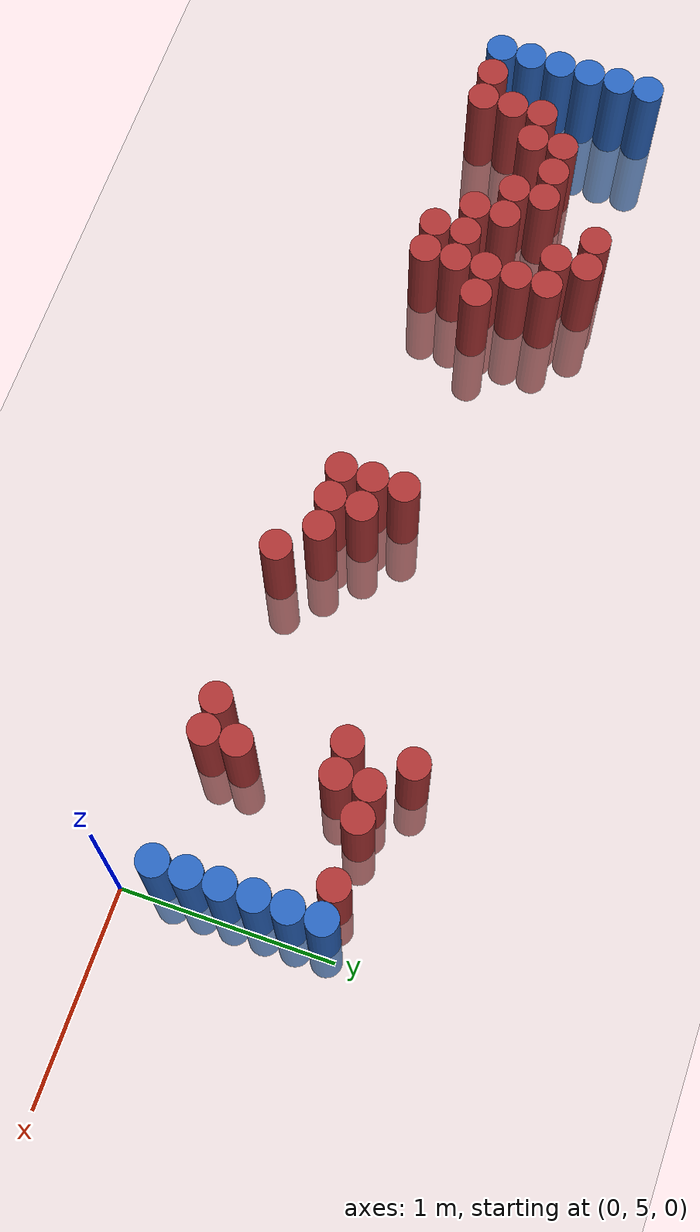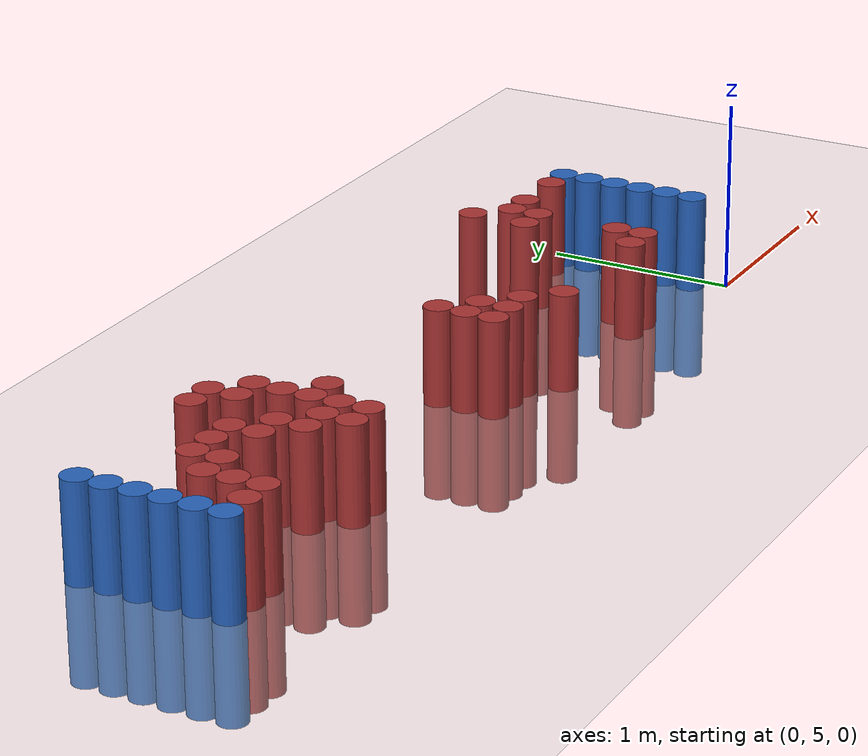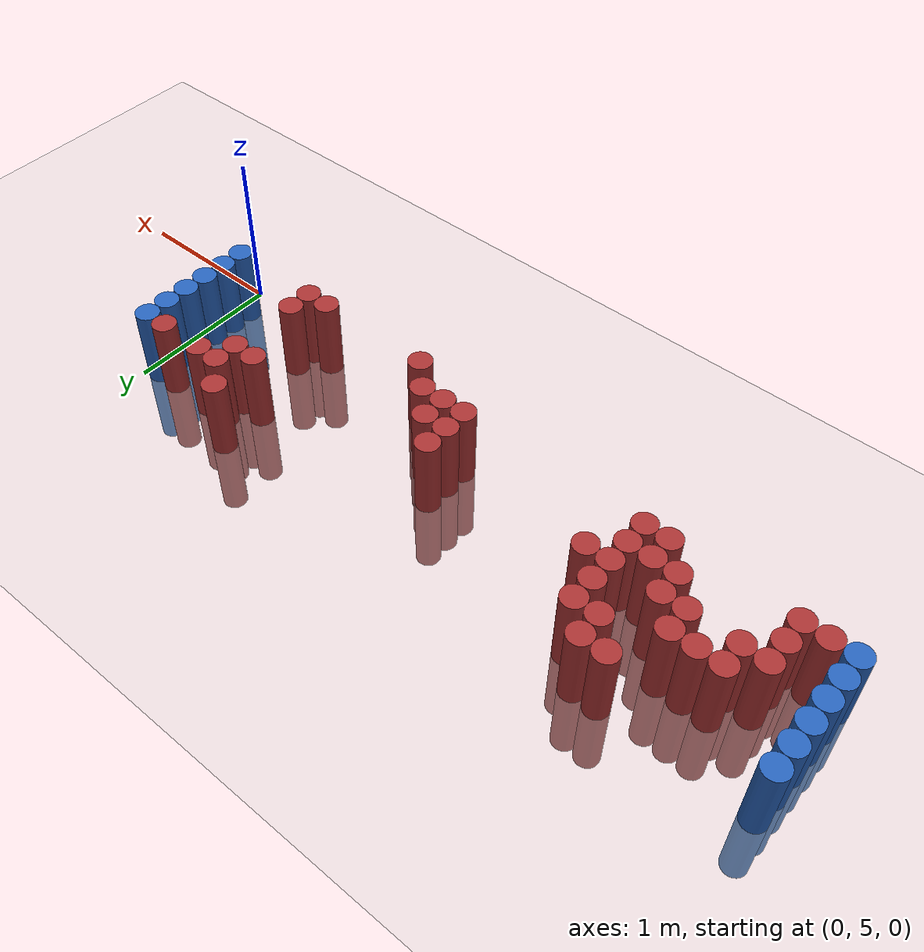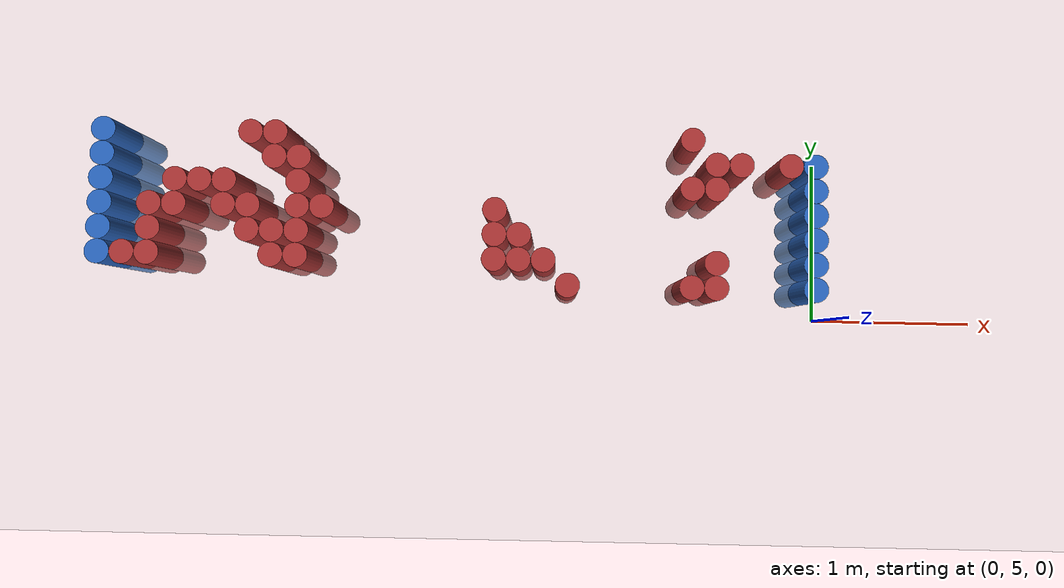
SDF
<sdf version="1.6">
 <world name="default">
  <model name="ground_plane">
   <static>1</static>
   <link name="link">
    <collision name="collision">
     <geometry><plane><normal>0 0 1</normal><size>100 100</size></plane></geometry>
     <surface><friction><ode><mu>100</mu><mu2>50</mu2></ode></friction></surface>
    </collision>
    <visual name="visual">
     <cast_shadows>0</cast_shadows>
     <geometry><plane><normal>0 0 1</normal><size>100 100</size></plane></geometry>
     <material>
      <script><uri>file://media/materials/scripts/gazebo.material</uri><name>Gazebo/Grey</name></script>
     </material>
    </visual>
   </link>
  </model>
  <model name="unit_cylinder_97">
   <static>1</static>
   <pose>-4.425000 5.325000 0.000000 0.000000 0.000000 0.000000</pose>
   <link name="link">
    <inertial>
     <mass>1</mass>
     <inertia><ixx>0.145833</ixx><ixy>0</ixy><ixz>0</ixz><iyy>0.145833</iyy><iyz>0</iyz><izz>0.125</izz></inertia>
    </inertial>
    <collision name="collision">
     <geometry><cylinder><radius>0.075000</radius><length>1</length></cylinder></geometry>
    </collision>
    <visual name="visual">
     <geometry><cylinder><radius>0.075000</radius><length>1</length></cylinder></geometry>
     <material>
      <ambient>0.152000 0.379000 0.720000 1</ambient>
      <diffuse>0.152000 0.379000 0.720000 1</diffuse>
     </material>
     <material>
      <script><name>Gazebo/Grey</name><uri>file://media/materials/scripts/gazebo.material</uri></script>
     </material>
    </visual>
   </link>
  </model>
  <model name="unit_cylinder_98">
   <static>1</static>
   <pose>-4.425000 5.475000 0.000000 0.000000 0.000000 0.000000</pose>
   <link name="link">
    <inertial>
     <mass>1</mass>
     <inertia><ixx>0.145833</ixx><ixy>0</ixy><ixz>0</ixz><iyy>0.145833</iyy><iyz>0</iyz><izz>0.125</izz></inertia>
    </inertial>
    <collision name="collision">
     <geometry><cylinder><radius>0.075000</radius><length>1</length></cylinder></geometry>
    </collision>
    <visual name="visual">
     <geometry><cylinder><radius>0.075000</radius><length>1</length></cylinder></geometry>
     <material>
      <ambient>0.152000 0.379000 0.720000 1</ambient>
      <diffuse>0.152000 0.379000 0.720000 1</diffuse>
     </material>
     <material>
      <script><name>Gazebo/Grey</name><uri>file://media/materials/scripts/gazebo.material</uri></script>
     </material>
    </visual>
   </link>
  </model>
  <model name="unit_cylinder_99">
   <static>1</static>
   <pose>-4.425000 5.625000 0.000000 0.000000 0.000000 0.000000</pose>
   <link name="link">
    <inertial>
     <mass>1</mass>
     <inertia><ixx>0.145833</ixx><ixy>0</ixy><ixz>0</ixz><iyy>0.145833</iyy><iyz>0</iyz><izz>0.125</izz></inertia>
    </inertial>
    <collision name="collision">
     <geometry><cylinder><radius>0.075000</radius><length>1</length></cylinder></geometry>
    </collision>
    <visual name="visual">
     <geometry><cylinder><radius>0.075000</radius><length>1</length></cylinder></geometry>
     <material>
      <ambient>0.152000 0.379000 0.720000 1</ambient>
      <diffuse>0.152000 0.379000 0.720000 1</diffuse>
     </material>
     <material>
      <script><name>Gazebo/Grey</name><uri>file://media/materials/scripts/gazebo.material</uri></script>
     </material>
    </visual>
   </link>
  </model>
  <model name="unit_cylinder_100">
   <static>1</static>
   <pose>-4.425000 5.775000 0.000000 0.000000 0.000000 0.000000</pose>
   <link name="link">
    <inertial>
     <mass>1</mass>
     <inertia><ixx>0.145833</ixx><ixy>0</ixy><ixz>0</ixz><iyy>0.145833</iyy><iyz>0</iyz><izz>0.125</izz></inertia>
    </inertial>
    <collision name="collision">
     <geometry><cylinder><radius>0.075000</radius><length>1</length></cylinder></geometry>
    </collision>
    <visual name="visual">
     <geometry><cylinder><radius>0.075000</radius><length>1</length></cylinder></geometry>
     <material>
      <ambient>0.152000 0.379000 0.720000 1</ambient>
      <diffuse>0.152000 0.379000 0.720000 1</diffuse>
     </material>
     <material>
      <script><name>Gazebo/Grey</name><uri>file://media/materials/scripts/gazebo.material</uri></script>
     </material>
    </visual>
   </link>
  </model>
  <model name="unit_cylinder_101">
   <static>1</static>
   <pose>-4.425000 5.925000 0.000000 0.000000 0.000000 0.000000</pose>
   <link name="link">
    <inertial>
     <mass>1</mass>
     <inertia><ixx>0.145833</ixx><ixy>0</ixy><ixz>0</ixz><iyy>0.145833</iyy><iyz>0</iyz><izz>0.125</izz></inertia>
    </inertial>
    <collision name="collision">
     <geometry><cylinder><radius>0.075000</radius><length>1</length></cylinder></geometry>
    </collision>
    <visual name="visual">
     <geometry><cylinder><radius>0.075000</radius><length>1</length></cylinder></geometry>
     <material>
      <ambient>0.152000 0.379000 0.720000 1</ambient>
      <diffuse>0.152000 0.379000 0.720000 1</diffuse>
     </material>
     <material>
      <script><name>Gazebo/Grey</name><uri>file://media/materials/scripts/gazebo.material</uri></script>
     </material>
    </visual>
   </link>
  </model>
  <model name="unit_cylinder_102">
   <static>1</static>
   <pose>-4.425000 6.075000 0.000000 0.000000 0.000000 0.000000</pose>
   <link name="link">
    <inertial>
     <mass>1</mass>
     <inertia><ixx>0.145833</ixx><ixy>0</ixy><ixz>0</ixz><iyy>0.145833</iyy><iyz>0</iyz><izz>0.125</izz></inertia>
    </inertial>
    <collision name="collision">
     <geometry><cylinder><radius>0.075000</radius><length>1</length></cylinder></geometry>
    </collision>
    <visual name="visual">
     <geometry><cylinder><radius>0.075000</radius><length>1</length></cylinder></geometry>
     <material>
      <ambient>0.152000 0.379000 0.720000 1</ambient>
      <diffuse>0.152000 0.379000 0.720000 1</diffuse>
     </material>
     <material>
      <script><name>Gazebo/Grey</name><uri>file://media/materials/scripts/gazebo.material</uri></script>
     </material>
    </visual>
   </link>
  </model>
  <model name="unit_cylinder_126">
   <static>1</static>
   <pose>-4.275000 5.325000 0.000000 0.000000 0.000000 0.000000</pose>
   <link name="link">
    <inertial>
     <mass>1</mass>
     <inertia><ixx>0.145833</ixx><ixy>0</ixy><ixz>0</ixz><iyy>0.145833</iyy><iyz>0</iyz><izz>0.125</izz></inertia>
    </inertial>
    <collision name="collision">
     <geometry><cylinder><radius>0.075000</radius><length>1</length></cylinder></geometry>
    </collision>
    <visual name="visual">
     <geometry><cylinder><radius>0.075000</radius><length>1</length></cylinder></geometry>
     <material>
      <ambient>0.648000 0.192000 0.192000 1</ambient>
      <diffuse>0.648000 0.192000 0.192000 1</diffuse>
     </material>
     <material>
      <script><name>Gazebo/Grey</name><uri>file://media/materials/scripts/gazebo.material</uri></script>
     </material>
    </visual>
   </link>
  </model>
  <model name="unit_cylinder_137">
   <static>1</static>
   <pose>-4.125000 5.325000 0.000000 0.000000 0.000000 0.000000</pose>
   <link name="link">
    <inertial>
     <mass>1</mass>
     <inertia><ixx>0.145833</ixx><ixy>0</ixy><ixz>0</ixz><iyy>0.145833</iyy><iyz>0</iyz><izz>0.125</izz></inertia>
    </inertial>
    <collision name="collision">
     <geometry><cylinder><radius>0.075000</radius><length>1</length></cylinder></geometry>
    </collision>
    <visual name="visual">
     <geometry><cylinder><radius>0.075000</radius><length>1</length></cylinder></geometry>
     <material>
      <ambient>0.648000 0.192000 0.192000 1</ambient>
      <diffuse>0.648000 0.192000 0.192000 1</diffuse>
     </material>
     <material>
      <script><name>Gazebo/Grey</name><uri>file://media/materials/scripts/gazebo.material</uri></script>
     </material>
    </visual>
   </link>
  </model>
  <model name="unit_cylinder_138">
   <static>1</static>
   <pose>-4.125000 5.475000 0.000000 0.000000 0.000000 0.000000</pose>
   <link name="link">
    <inertial>
     <mass>1</mass>
     <inertia><ixx>0.145833</ixx><ixy>0</ixy><ixz>0</ixz><iyy>0.145833</iyy><iyz>0</iyz><izz>0.125</izz></inertia>
    </inertial>
    <collision name="collision">
     <geometry><cylinder><radius>0.075000</radius><length>1</length></cylinder></geometry>
    </collision>
    <visual name="visual">
     <geometry><cylinder><radius>0.075000</radius><length>1</length></cylinder></geometry>
     <material>
      <ambient>0.648000 0.192000 0.192000 1</ambient>
      <diffuse>0.648000 0.192000 0.192000 1</diffuse>
     </material>
     <material>
      <script><name>Gazebo/Grey</name><uri>file://media/materials/scripts/gazebo.material</uri></script>
     </material>
    </visual>
   </link>
  </model>
  <model name="unit_cylinder_139">
   <static>1</static>
   <pose>-4.125000 5.625000 0.000000 0.000000 0.000000 0.000000</pose>
   <link name="link">
    <inertial>
     <mass>1</mass>
     <inertia><ixx>0.145833</ixx><ixy>0</ixy><ixz>0</ixz><iyy>0.145833</iyy><iyz>0</iyz><izz>0.125</izz></inertia>
    </inertial>
    <collision name="collision">
     <geometry><cylinder><radius>0.075000</radius><length>1</length></cylinder></geometry>
    </collision>
    <visual name="visual">
     <geometry><cylinder><radius>0.075000</radius><length>1</length></cylinder></geometry>
     <material>
      <ambient>0.648000 0.192000 0.192000 1</ambient>
      <diffuse>0.648000 0.192000 0.192000 1</diffuse>
     </material>
     <material>
      <script><name>Gazebo/Grey</name><uri>file://media/materials/scripts/gazebo.material</uri></script>
     </material>
    </visual>
   </link>
  </model>
  <model name="unit_cylinder_147">
   <static>1</static>
   <pose>-3.975000 5.625000 0.000000 0.000000 0.000000 0.000000</pose>
   <link name="link">
    <inertial>
     <mass>1</mass>
     <inertia><ixx>0.145833</ixx><ixy>0</ixy><ixz>0</ixz><iyy>0.145833</iyy><iyz>0</iyz><izz>0.125</izz></inertia>
    </inertial>
    <collision name="collision">
     <geometry><cylinder><radius>0.075000</radius><length>1</length></cylinder></geometry>
    </collision>
    <visual name="visual">
     <geometry><cylinder><radius>0.075000</radius><length>1</length></cylinder></geometry>
     <material>
      <ambient>0.648000 0.192000 0.192000 1</ambient>
      <diffuse>0.648000 0.192000 0.192000 1</diffuse>
     </material>
     <material>
      <script><name>Gazebo/Grey</name><uri>file://media/materials/scripts/gazebo.material</uri></script>
     </material>
    </visual>
   </link>
  </model>
  <model name="unit_cylinder_148">
   <static>1</static>
   <pose>-3.975000 5.775000 0.000000 0.000000 0.000000 0.000000</pose>
   <link name="link">
    <inertial>
     <mass>1</mass>
     <inertia><ixx>0.145833</ixx><ixy>0</ixy><ixz>0</ixz><iyy>0.145833</iyy><iyz>0</iyz><izz>0.125</izz></inertia>
    </inertial>
    <collision name="collision">
     <geometry><cylinder><radius>0.075000</radius><length>1</length></cylinder></geometry>
    </collision>
    <visual name="visual">
     <geometry><cylinder><radius>0.075000</radius><length>1</length></cylinder></geometry>
     <material>
      <ambient>0.648000 0.192000 0.192000 1</ambient>
      <diffuse>0.648000 0.192000 0.192000 1</diffuse>
     </material>
     <material>
      <script><name>Gazebo/Grey</name><uri>file://media/materials/scripts/gazebo.material</uri></script>
     </material>
    </visual>
   </link>
  </model>
  <model name="unit_cylinder_157">
   <static>1</static>
   <pose>-3.825000 5.775000 0.000000 0.000000 0.000000 0.000000</pose>
   <link name="link">
    <inertial>
     <mass>1</mass>
     <inertia><ixx>0.145833</ixx><ixy>0</ixy><ixz>0</ixz><iyy>0.145833</iyy><iyz>0</iyz><izz>0.125</izz></inertia>
    </inertial>
    <collision name="collision">
     <geometry><cylinder><radius>0.075000</radius><length>1</length></cylinder></geometry>
    </collision>
    <visual name="visual">
     <geometry><cylinder><radius>0.075000</radius><length>1</length></cylinder></geometry>
     <material>
      <ambient>0.648000 0.192000 0.192000 1</ambient>
      <diffuse>0.648000 0.192000 0.192000 1</diffuse>
     </material>
     <material>
      <script><name>Gazebo/Grey</name><uri>file://media/materials/scripts/gazebo.material</uri></script>
     </material>
    </visual>
   </link>
  </model>
  <model name="unit_cylinder_163">
   <static>1</static>
   <pose>-3.675000 5.625000 0.000000 0.000000 0.000000 0.000000</pose>
   <link name="link">
    <inertial>
     <mass>1</mass>
     <inertia><ixx>0.145833</ixx><ixy>0</ixy><ixz>0</ixz><iyy>0.145833</iyy><iyz>0</iyz><izz>0.125</izz></inertia>
    </inertial>
    <collision name="collision">
     <geometry><cylinder><radius>0.075000</radius><length>1</length></cylinder></geometry>
    </collision>
    <visual name="visual">
     <geometry><cylinder><radius>0.075000</radius><length>1</length></cylinder></geometry>
     <material>
      <ambient>0.648000 0.192000 0.192000 1</ambient>
      <diffuse>0.648000 0.192000 0.192000 1</diffuse>
     </material>
     <material>
      <script><name>Gazebo/Grey</name><uri>file://media/materials/scripts/gazebo.material</uri></script>
     </material>
    </visual>
   </link>
  </model>
  <model name="unit_cylinder_164">
   <static>1</static>
   <pose>-3.675000 5.775000 0.000000 0.000000 0.000000 0.000000</pose>
   <link name="link">
    <inertial>
     <mass>1</mass>
     <inertia><ixx>0.145833</ixx><ixy>0</ixy><ixz>0</ixz><iyy>0.145833</iyy><iyz>0</iyz><izz>0.125</izz></inertia>
    </inertial>
    <collision name="collision">
     <geometry><cylinder><radius>0.075000</radius><length>1</length></cylinder></geometry>
    </collision>
    <visual name="visual">
     <geometry><cylinder><radius>0.075000</radius><length>1</length></cylinder></geometry>
     <material>
      <ambient>0.648000 0.192000 0.192000 1</ambient>
      <diffuse>0.648000 0.192000 0.192000 1</diffuse>
     </material>
     <material>
      <script><name>Gazebo/Grey</name><uri>file://media/materials/scripts/gazebo.material</uri></script>
     </material>
    </visual>
   </link>
  </model>
  <model name="unit_cylinder_171">
   <static>1</static>
   <pose>-3.525000 5.475000 0.000000 0.000000 0.000000 0.000000</pose>
   <link name="link">
    <inertial>
     <mass>1</mass>
     <inertia><ixx>0.145833</ixx><ixy>0</ixy><ixz>0</ixz><iyy>0.145833</iyy><iyz>0</iyz><izz>0.125</izz></inertia>
    </inertial>
    <collision name="collision">
     <geometry><cylinder><radius>0.075000</radius><length>1</length></cylinder></geometry>
    </collision>
    <visual name="visual">
     <geometry><cylinder><radius>0.075000</radius><length>1</length></cylinder></geometry>
     <material>
      <ambient>0.648000 0.192000 0.192000 1</ambient>
      <diffuse>0.648000 0.192000 0.192000 1</diffuse>
     </material>
     <material>
      <script><name>Gazebo/Grey</name><uri>file://media/materials/scripts/gazebo.material</uri></script>
     </material>
    </visual>
   </link>
  </model>
  <model name="unit_cylinder_172">
   <static>1</static>
   <pose>-3.525000 5.625000 0.000000 0.000000 0.000000 0.000000</pose>
   <link name="link">
    <inertial>
     <mass>1</mass>
     <inertia><ixx>0.145833</ixx><ixy>0</ixy><ixz>0</ixz><iyy>0.145833</iyy><iyz>0</iyz><izz>0.125</izz></inertia>
    </inertial>
    <collision name="collision">
     <geometry><cylinder><radius>0.075000</radius><length>1</length></cylinder></geometry>
    </collision>
    <visual name="visual">
     <geometry><cylinder><radius>0.075000</radius><length>1</length></cylinder></geometry>
     <material>
      <ambient>0.648000 0.192000 0.192000 1</ambient>
      <diffuse>0.648000 0.192000 0.192000 1</diffuse>
     </material>
     <material>
      <script><name>Gazebo/Grey</name><uri>file://media/materials/scripts/gazebo.material</uri></script>
     </material>
    </visual>
   </link>
  </model>
  <model name="unit_cylinder_173">
   <static>1</static>
   <pose>-3.525000 6.075000 0.000000 0.000000 0.000000 0.000000</pose>
   <link name="link">
    <inertial>
     <mass>1</mass>
     <inertia><ixx>0.145833</ixx><ixy>0</ixy><ixz>0</ixz><iyy>0.145833</iyy><iyz>0</iyz><izz>0.125</izz></inertia>
    </inertial>
    <collision name="collision">
     <geometry><cylinder><radius>0.075000</radius><length>1</length></cylinder></geometry>
    </collision>
    <visual name="visual">
     <geometry><cylinder><radius>0.075000</radius><length>1</length></cylinder></geometry>
     <material>
      <ambient>0.648000 0.192000 0.192000 1</ambient>
      <diffuse>0.648000 0.192000 0.192000 1</diffuse>
     </material>
     <material>
      <script><name>Gazebo/Grey</name><uri>file://media/materials/scripts/gazebo.material</uri></script>
     </material>
    </visual>
   </link>
  </model>
  <model name="unit_cylinder_184">
   <static>1</static>
   <pose>-3.375000 5.325000 0.000000 0.000000 0.000000 0.000000</pose>
   <link name="link">
    <inertial>
     <mass>1</mass>
     <inertia><ixx>0.145833</ixx><ixy>0</ixy><ixz>0</ixz><iyy>0.145833</iyy><iyz>0</iyz><izz>0.125</izz></inertia>
    </inertial>
    <collision name="collision">
     <geometry><cylinder><radius>0.075000</radius><length>1</length></cylinder></geometry>
    </collision>
    <visual name="visual">
     <geometry><cylinder><radius>0.075000</radius><length>1</length></cylinder></geometry>
     <material>
      <ambient>0.648000 0.192000 0.192000 1</ambient>
      <diffuse>0.648000 0.192000 0.192000 1</diffuse>
     </material>
     <material>
      <script><name>Gazebo/Grey</name><uri>file://media/materials/scripts/gazebo.material</uri></script>
     </material>
    </visual>
   </link>
  </model>
  <model name="unit_cylinder_185">
   <static>1</static>
   <pose>-3.375000 5.475000 0.000000 0.000000 0.000000 0.000000</pose>
   <link name="link">
    <inertial>
     <mass>1</mass>
     <inertia><ixx>0.145833</ixx><ixy>0</ixy><ixz>0</ixz><iyy>0.145833</iyy><iyz>0</iyz><izz>0.125</izz></inertia>
    </inertial>
    <collision name="collision">
     <geometry><cylinder><radius>0.075000</radius><length>1</length></cylinder></geometry>
    </collision>
    <visual name="visual">
     <geometry><cylinder><radius>0.075000</radius><length>1</length></cylinder></geometry>
     <material>
      <ambient>0.648000 0.192000 0.192000 1</ambient>
      <diffuse>0.648000 0.192000 0.192000 1</diffuse>
     </material>
     <material>
      <script><name>Gazebo/Grey</name><uri>file://media/materials/scripts/gazebo.material</uri></script>
     </material>
    </visual>
   </link>
  </model>
  <model name="unit_cylinder_186">
   <static>1</static>
   <pose>-3.375000 5.925000 0.000000 0.000000 0.000000 0.000000</pose>
   <link name="link">
    <inertial>
     <mass>1</mass>
     <inertia><ixx>0.145833</ixx><ixy>0</ixy><ixz>0</ixz><iyy>0.145833</iyy><iyz>0</iyz><izz>0.125</izz></inertia>
    </inertial>
    <collision name="collision">
     <geometry><cylinder><radius>0.075000</radius><length>1</length></cylinder></geometry>
    </collision>
    <visual name="visual">
     <geometry><cylinder><radius>0.075000</radius><length>1</length></cylinder></geometry>
     <material>
      <ambient>0.648000 0.192000 0.192000 1</ambient>
      <diffuse>0.648000 0.192000 0.192000 1</diffuse>
     </material>
     <material>
      <script><name>Gazebo/Grey</name><uri>file://media/materials/scripts/gazebo.material</uri></script>
     </material>
    </visual>
   </link>
  </model>
  <model name="unit_cylinder_187">
   <static>1</static>
   <pose>-3.375000 6.075000 0.000000 0.000000 0.000000 0.000000</pose>
   <link name="link">
    <inertial>
     <mass>1</mass>
     <inertia><ixx>0.145833</ixx><ixy>0</ixy><ixz>0</ixz><iyy>0.145833</iyy><iyz>0</iyz><izz>0.125</izz></inertia>
    </inertial>
    <collision name="collision">
     <geometry><cylinder><radius>0.075000</radius><length>1</length></cylinder></geometry>
    </collision>
    <visual name="visual">
     <geometry><cylinder><radius>0.075000</radius><length>1</length></cylinder></geometry>
     <material>
      <ambient>0.648000 0.192000 0.192000 1</ambient>
      <diffuse>0.648000 0.192000 0.192000 1</diffuse>
     </material>
     <material>
      <script><name>Gazebo/Grey</name><uri>file://media/materials/scripts/gazebo.material</uri></script>
     </material>
    </visual>
   </link>
  </model>
  <model name="unit_cylinder_196">
   <static>1</static>
   <pose>-3.225000 5.325000 0.000000 0.000000 0.000000 0.000000</pose>
   <link name="link">
    <inertial>
     <mass>1</mass>
     <inertia><ixx>0.145833</ixx><ixy>0</ixy><ixz>0</ixz><iyy>0.145833</iyy><iyz>0</iyz><izz>0.125</izz></inertia>
    </inertial>
    <collision name="collision">
     <geometry><cylinder><radius>0.075000</radius><length>1</length></cylinder></geometry>
    </collision>
    <visual name="visual">
     <geometry><cylinder><radius>0.075000</radius><length>1</length></cylinder></geometry>
     <material>
      <ambient>0.648000 0.192000 0.192000 1</ambient>
      <diffuse>0.648000 0.192000 0.192000 1</diffuse>
     </material>
     <material>
      <script><name>Gazebo/Grey</name><uri>file://media/materials/scripts/gazebo.material</uri></script>
     </material>
    </visual>
   </link>
  </model>
  <model name="unit_cylinder_197">
   <static>1</static>
   <pose>-3.225000 5.475000 0.000000 0.000000 0.000000 0.000000</pose>
   <link name="link">
    <inertial>
     <mass>1</mass>
     <inertia><ixx>0.145833</ixx><ixy>0</ixy><ixz>0</ixz><iyy>0.145833</iyy><iyz>0</iyz><izz>0.125</izz></inertia>
    </inertial>
    <collision name="collision">
     <geometry><cylinder><radius>0.075000</radius><length>1</length></cylinder></geometry>
    </collision>
    <visual name="visual">
     <geometry><cylinder><radius>0.075000</radius><length>1</length></cylinder></geometry>
     <material>
      <ambient>0.648000 0.192000 0.192000 1</ambient>
      <diffuse>0.648000 0.192000 0.192000 1</diffuse>
     </material>
     <material>
      <script><name>Gazebo/Grey</name><uri>file://media/materials/scripts/gazebo.material</uri></script>
     </material>
    </visual>
   </link>
  </model>
  <model name="unit_cylinder_198">
   <static>1</static>
   <pose>-3.225000 5.625000 0.000000 0.000000 0.000000 0.000000</pose>
   <link name="link">
    <inertial>
     <mass>1</mass>
     <inertia><ixx>0.145833</ixx><ixy>0</ixy><ixz>0</ixz><iyy>0.145833</iyy><iyz>0</iyz><izz>0.125</izz></inertia>
    </inertial>
    <collision name="collision">
     <geometry><cylinder><radius>0.075000</radius><length>1</length></cylinder></geometry>
    </collision>
    <visual name="visual">
     <geometry><cylinder><radius>0.075000</radius><length>1</length></cylinder></geometry>
     <material>
      <ambient>0.648000 0.192000 0.192000 1</ambient>
      <diffuse>0.648000 0.192000 0.192000 1</diffuse>
     </material>
     <material>
      <script><name>Gazebo/Grey</name><uri>file://media/materials/scripts/gazebo.material</uri></script>
     </material>
    </visual>
   </link>
  </model>
  <model name="unit_cylinder_199">
   <static>1</static>
   <pose>-3.225000 5.775000 0.000000 0.000000 0.000000 0.000000</pose>
   <link name="link">
    <inertial>
     <mass>1</mass>
     <inertia><ixx>0.145833</ixx><ixy>0</ixy><ixz>0</ixz><iyy>0.145833</iyy><iyz>0</iyz><izz>0.125</izz></inertia>
    </inertial>
    <collision name="collision">
     <geometry><cylinder><radius>0.075000</radius><length>1</length></cylinder></geometry>
    </collision>
    <visual name="visual">
     <geometry><cylinder><radius>0.075000</radius><length>1</length></cylinder></geometry>
     <material>
      <ambient>0.648000 0.192000 0.192000 1</ambient>
      <diffuse>0.648000 0.192000 0.192000 1</diffuse>
     </material>
     <material>
      <script><name>Gazebo/Grey</name><uri>file://media/materials/scripts/gazebo.material</uri></script>
     </material>
    </visual>
   </link>
  </model>
  <model name="unit_cylinder_200">
   <static>1</static>
   <pose>-3.225000 5.925000 0.000000 0.000000 0.000000 0.000000</pose>
   <link name="link">
    <inertial>
     <mass>1</mass>
     <inertia><ixx>0.145833</ixx><ixy>0</ixy><ixz>0</ixz><iyy>0.145833</iyy><iyz>0</iyz><izz>0.125</izz></inertia>
    </inertial>
    <collision name="collision">
     <geometry><cylinder><radius>0.075000</radius><length>1</length></cylinder></geometry>
    </collision>
    <visual name="visual">
     <geometry><cylinder><radius>0.075000</radius><length>1</length></cylinder></geometry>
     <material>
      <ambient>0.648000 0.192000 0.192000 1</ambient>
      <diffuse>0.648000 0.192000 0.192000 1</diffuse>
     </material>
     <material>
      <script><name>Gazebo/Grey</name><uri>file://media/materials/scripts/gazebo.material</uri></script>
     </material>
    </visual>
   </link>
  </model>
  <model name="unit_cylinder_207">
   <static>1</static>
   <pose>-3.075000 5.625000 0.000000 0.000000 0.000000 0.000000</pose>
   <link name="link">
    <inertial>
     <mass>1</mass>
     <inertia><ixx>0.145833</ixx><ixy>0</ixy><ixz>0</ixz><iyy>0.145833</iyy><iyz>0</iyz><izz>0.125</izz></inertia>
    </inertial>
    <collision name="collision">
     <geometry><cylinder><radius>0.075000</radius><length>1</length></cylinder></geometry>
    </collision>
    <visual name="visual">
     <geometry><cylinder><radius>0.075000</radius><length>1</length></cylinder></geometry>
     <material>
      <ambient>0.648000 0.192000 0.192000 1</ambient>
      <diffuse>0.648000 0.192000 0.192000 1</diffuse>
     </material>
     <material>
      <script><name>Gazebo/Grey</name><uri>file://media/materials/scripts/gazebo.material</uri></script>
     </material>
    </visual>
   </link>
  </model>
  <model name="unit_cylinder_220">
   <static>1</static>
   <pose>-2.025000 5.325000 0.000000 0.000000 0.000000 0.000000</pose>
   <link name="link">
    <inertial>
     <mass>1</mass>
     <inertia><ixx>0.145833</ixx><ixy>0</ixy><ixz>0</ixz><iyy>0.145833</iyy><iyz>0</iyz><izz>0.125</izz></inertia>
    </inertial>
    <collision name="collision">
     <geometry><cylinder><radius>0.075000</radius><length>1</length></cylinder></geometry>
    </collision>
    <visual name="visual">
     <geometry><cylinder><radius>0.075000</radius><length>1</length></cylinder></geometry>
     <material>
      <ambient>0.648000 0.192000 0.192000 1</ambient>
      <diffuse>0.648000 0.192000 0.192000 1</diffuse>
     </material>
     <material>
      <script><name>Gazebo/Grey</name><uri>file://media/materials/scripts/gazebo.material</uri></script>
     </material>
    </visual>
   </link>
  </model>
  <model name="unit_cylinder_221">
   <static>1</static>
   <pose>-2.025000 5.475000 0.000000 0.000000 0.000000 0.000000</pose>
   <link name="link">
    <inertial>
     <mass>1</mass>
     <inertia><ixx>0.145833</ixx><ixy>0</ixy><ixz>0</ixz><iyy>0.145833</iyy><iyz>0</iyz><izz>0.125</izz></inertia>
    </inertial>
    <collision name="collision">
     <geometry><cylinder><radius>0.075000</radius><length>1</length></cylinder></geometry>
    </collision>
    <visual name="visual">
     <geometry><cylinder><radius>0.075000</radius><length>1</length></cylinder></geometry>
     <material>
      <ambient>0.648000 0.192000 0.192000 1</ambient>
      <diffuse>0.648000 0.192000 0.192000 1</diffuse>
     </material>
     <material>
      <script><name>Gazebo/Grey</name><uri>file://media/materials/scripts/gazebo.material</uri></script>
     </material>
    </visual>
   </link>
  </model>
  <model name="unit_cylinder_222">
   <static>1</static>
   <pose>-2.025000 5.625000 0.000000 0.000000 0.000000 0.000000</pose>
   <link name="link">
    <inertial>
     <mass>1</mass>
     <inertia><ixx>0.145833</ixx><ixy>0</ixy><ixz>0</ixz><iyy>0.145833</iyy><iyz>0</iyz><izz>0.125</izz></inertia>
    </inertial>
    <collision name="collision">
     <geometry><cylinder><radius>0.075000</radius><length>1</length></cylinder></geometry>
    </collision>
    <visual name="visual">
     <geometry><cylinder><radius>0.075000</radius><length>1</length></cylinder></geometry>
     <material>
      <ambient>0.648000 0.192000 0.192000 1</ambient>
      <diffuse>0.648000 0.192000 0.192000 1</diffuse>
     </material>
     <material>
      <script><name>Gazebo/Grey</name><uri>file://media/materials/scripts/gazebo.material</uri></script>
     </material>
    </visual>
   </link>
  </model>
  <model name="unit_cylinder_225">
   <static>1</static>
   <pose>-1.875000 5.325000 0.000000 0.000000 0.000000 0.000000</pose>
   <link name="link">
    <inertial>
     <mass>1</mass>
     <inertia><ixx>0.145833</ixx><ixy>0</ixy><ixz>0</ixz><iyy>0.145833</iyy><iyz>0</iyz><izz>0.125</izz></inertia>
    </inertial>
    <collision name="collision">
     <geometry><cylinder><radius>0.075000</radius><length>1</length></cylinder></geometry>
    </collision>
    <visual name="visual">
     <geometry><cylinder><radius>0.075000</radius><length>1</length></cylinder></geometry>
     <material>
      <ambient>0.648000 0.192000 0.192000 1</ambient>
      <diffuse>0.648000 0.192000 0.192000 1</diffuse>
     </material>
     <material>
      <script><name>Gazebo/Grey</name><uri>file://media/materials/scripts/gazebo.material</uri></script>
     </material>
    </visual>
   </link>
  </model>
  <model name="unit_cylinder_226">
   <static>1</static>
   <pose>-1.875000 5.475000 0.000000 0.000000 0.000000 0.000000</pose>
   <link name="link">
    <inertial>
     <mass>1</mass>
     <inertia><ixx>0.145833</ixx><ixy>0</ixy><ixz>0</ixz><iyy>0.145833</iyy><iyz>0</iyz><izz>0.125</izz></inertia>
    </inertial>
    <collision name="collision">
     <geometry><cylinder><radius>0.075000</radius><length>1</length></cylinder></geometry>
    </collision>
    <visual name="visual">
     <geometry><cylinder><radius>0.075000</radius><length>1</length></cylinder></geometry>
     <material>
      <ambient>0.648000 0.192000 0.192000 1</ambient>
      <diffuse>0.648000 0.192000 0.192000 1</diffuse>
     </material>
     <material>
      <script><name>Gazebo/Grey</name><uri>file://media/materials/scripts/gazebo.material</uri></script>
     </material>
    </visual>
   </link>
  </model>
  <model name="unit_cylinder_232">
   <static>1</static>
   <pose>-1.725000 5.325000 0.000000 0.000000 0.000000 0.000000</pose>
   <link name="link">
    <inertial>
     <mass>1</mass>
     <inertia><ixx>0.145833</ixx><ixy>0</ixy><ixz>0</ixz><iyy>0.145833</iyy><iyz>0</iyz><izz>0.125</izz></inertia>
    </inertial>
    <collision name="collision">
     <geometry><cylinder><radius>0.075000</radius><length>1</length></cylinder></geometry>
    </collision>
    <visual name="visual">
     <geometry><cylinder><radius>0.075000</radius><length>1</length></cylinder></geometry>
     <material>
      <ambient>0.648000 0.192000 0.192000 1</ambient>
      <diffuse>0.648000 0.192000 0.192000 1</diffuse>
     </material>
     <material>
      <script><name>Gazebo/Grey</name><uri>file://media/materials/scripts/gazebo.material</uri></script>
     </material>
    </visual>
   </link>
  </model>
  <model name="unit_cylinder_238">
   <static>1</static>
   <pose>-1.575000 5.175000 0.000000 0.000000 0.000000 0.000000</pose>
   <link name="link">
    <inertial>
     <mass>1</mass>
     <inertia><ixx>0.145833</ixx><ixy>0</ixy><ixz>0</ixz><iyy>0.145833</iyy><iyz>0</iyz><izz>0.125</izz></inertia>
    </inertial>
    <collision name="collision">
     <geometry><cylinder><radius>0.075000</radius><length>1</length></cylinder></geometry>
    </collision>
    <visual name="visual">
     <geometry><cylinder><radius>0.075000</radius><length>1</length></cylinder></geometry>
     <material>
      <ambient>0.648000 0.192000 0.192000 1</ambient>
      <diffuse>0.648000 0.192000 0.192000 1</diffuse>
     </material>
     <material>
      <script><name>Gazebo/Grey</name><uri>file://media/materials/scripts/gazebo.material</uri></script>
     </material>
    </visual>
   </link>
  </model>
  <model name="unit_cylinder_273">
   <static>1</static>
   <pose>-0.825000 5.175000 0.000000 0.000000 0.000000 0.000000</pose>
   <link name="link">
    <inertial>
     <mass>1</mass>
     <inertia><ixx>0.145833</ixx><ixy>0</ixy><ixz>0</ixz><iyy>0.145833</iyy><iyz>0</iyz><izz>0.125</izz></inertia>
    </inertial>
    <collision name="collision">
     <geometry><cylinder><radius>0.075000</radius><length>1</length></cylinder></geometry>
    </collision>
    <visual name="visual">
     <geometry><cylinder><radius>0.075000</radius><length>1</length></cylinder></geometry>
     <material>
      <ambient>0.648000 0.192000 0.192000 1</ambient>
      <diffuse>0.648000 0.192000 0.192000 1</diffuse>
     </material>
     <material>
      <script><name>Gazebo/Grey</name><uri>file://media/materials/scripts/gazebo.material</uri></script>
     </material>
    </visual>
   </link>
  </model>
  <model name="unit_cylinder_274">
   <static>1</static>
   <pose>-0.825000 5.775000 0.000000 0.000000 0.000000 0.000000</pose>
   <link name="link">
    <inertial>
     <mass>1</mass>
     <inertia><ixx>0.145833</ixx><ixy>0</ixy><ixz>0</ixz><iyy>0.145833</iyy><iyz>0</iyz><izz>0.125</izz></inertia>
    </inertial>
    <collision name="collision">
     <geometry><cylinder><radius>0.075000</radius><length>1</length></cylinder></geometry>
    </collision>
    <visual name="visual">
     <geometry><cylinder><radius>0.075000</radius><length>1</length></cylinder></geometry>
     <material>
      <ambient>0.648000 0.192000 0.192000 1</ambient>
      <diffuse>0.648000 0.192000 0.192000 1</diffuse>
     </material>
     <material>
      <script><name>Gazebo/Grey</name><uri>file://media/materials/scripts/gazebo.material</uri></script>
     </material>
    </visual>
   </link>
  </model>
  <model name="unit_cylinder_275">
   <static>1</static>
   <pose>-0.825000 6.075000 0.000000 0.000000 0.000000 0.000000</pose>
   <link name="link">
    <inertial>
     <mass>1</mass>
     <inertia><ixx>0.145833</ixx><ixy>0</ixy><ixz>0</ixz><iyy>0.145833</iyy><iyz>0</iyz><izz>0.125</izz></inertia>
    </inertial>
    <collision name="collision">
     <geometry><cylinder><radius>0.075000</radius><length>1</length></cylinder></geometry>
    </collision>
    <visual name="visual">
     <geometry><cylinder><radius>0.075000</radius><length>1</length></cylinder></geometry>
     <material>
      <ambient>0.648000 0.192000 0.192000 1</ambient>
      <diffuse>0.648000 0.192000 0.192000 1</diffuse>
     </material>
     <material>
      <script><name>Gazebo/Grey</name><uri>file://media/materials/scripts/gazebo.material</uri></script>
     </material>
    </visual>
   </link>
  </model>
  <model name="unit_cylinder_283">
   <static>1</static>
   <pose>-0.675000 5.175000 0.000000 0.000000 0.000000 0.000000</pose>
   <link name="link">
    <inertial>
     <mass>1</mass>
     <inertia><ixx>0.145833</ixx><ixy>0</ixy><ixz>0</ixz><iyy>0.145833</iyy><iyz>0</iyz><izz>0.125</izz></inertia>
    </inertial>
    <collision name="collision">
     <geometry><cylinder><radius>0.075000</radius><length>1</length></cylinder></geometry>
    </collision>
    <visual name="visual">
     <geometry><cylinder><radius>0.075000</radius><length>1</length></cylinder></geometry>
     <material>
      <ambient>0.648000 0.192000 0.192000 1</ambient>
      <diffuse>0.648000 0.192000 0.192000 1</diffuse>
     </material>
     <material>
      <script><name>Gazebo/Grey</name><uri>file://media/materials/scripts/gazebo.material</uri></script>
     </material>
    </visual>
   </link>
  </model>
  <model name="unit_cylinder_284">
   <static>1</static>
   <pose>-0.675000 5.325000 0.000000 0.000000 0.000000 0.000000</pose>
   <link name="link">
    <inertial>
     <mass>1</mass>
     <inertia><ixx>0.145833</ixx><ixy>0</ixy><ixz>0</ixz><iyy>0.145833</iyy><iyz>0</iyz><izz>0.125</izz></inertia>
    </inertial>
    <collision name="collision">
     <geometry><cylinder><radius>0.075000</radius><length>1</length></cylinder></geometry>
    </collision>
    <visual name="visual">
     <geometry><cylinder><radius>0.075000</radius><length>1</length></cylinder></geometry>
     <material>
      <ambient>0.648000 0.192000 0.192000 1</ambient>
      <diffuse>0.648000 0.192000 0.192000 1</diffuse>
     </material>
     <material>
      <script><name>Gazebo/Grey</name><uri>file://media/materials/scripts/gazebo.material</uri></script>
     </material>
    </visual>
   </link>
  </model>
  <model name="unit_cylinder_285">
   <static>1</static>
   <pose>-0.675000 5.775000 0.000000 0.000000 0.000000 0.000000</pose>
   <link name="link">
    <inertial>
     <mass>1</mass>
     <inertia><ixx>0.145833</ixx><ixy>0</ixy><ixz>0</ixz><iyy>0.145833</iyy><iyz>0</iyz><izz>0.125</izz></inertia>
    </inertial>
    <collision name="collision">
     <geometry><cylinder><radius>0.075000</radius><length>1</length></cylinder></geometry>
    </collision>
    <visual name="visual">
     <geometry><cylinder><radius>0.075000</radius><length>1</length></cylinder></geometry>
     <material>
      <ambient>0.648000 0.192000 0.192000 1</ambient>
      <diffuse>0.648000 0.192000 0.192000 1</diffuse>
     </material>
     <material>
      <script><name>Gazebo/Grey</name><uri>file://media/materials/scripts/gazebo.material</uri></script>
     </material>
    </visual>
   </link>
  </model>
  <model name="unit_cylinder_286">
   <static>1</static>
   <pose>-0.675000 5.925000 0.000000 0.000000 0.000000 0.000000</pose>
   <link name="link">
    <inertial>
     <mass>1</mass>
     <inertia><ixx>0.145833</ixx><ixy>0</ixy><ixz>0</ixz><iyy>0.145833</iyy><iyz>0</iyz><izz>0.125</izz></inertia>
    </inertial>
    <collision name="collision">
     <geometry><cylinder><radius>0.075000</radius><length>1</length></cylinder></geometry>
    </collision>
    <visual name="visual">
     <geometry><cylinder><radius>0.075000</radius><length>1</length></cylinder></geometry>
     <material>
      <ambient>0.648000 0.192000 0.192000 1</ambient>
      <diffuse>0.648000 0.192000 0.192000 1</diffuse>
     </material>
     <material>
      <script><name>Gazebo/Grey</name><uri>file://media/materials/scripts/gazebo.material</uri></script>
     </material>
    </visual>
   </link>
  </model>
  <model name="unit_cylinder_293">
   <static>1</static>
   <pose>-0.525000 5.925000 0.000000 0.000000 0.000000 0.000000</pose>
   <link name="link">
    <inertial>
     <mass>1</mass>
     <inertia><ixx>0.145833</ixx><ixy>0</ixy><ixz>0</ixz><iyy>0.145833</iyy><iyz>0</iyz><izz>0.125</izz></inertia>
    </inertial>
    <collision name="collision">
     <geometry><cylinder><radius>0.075000</radius><length>1</length></cylinder></geometry>
    </collision>
    <visual name="visual">
     <geometry><cylinder><radius>0.075000</radius><length>1</length></cylinder></geometry>
     <material>
      <ambient>0.648000 0.192000 0.192000 1</ambient>
      <diffuse>0.648000 0.192000 0.192000 1</diffuse>
     </material>
     <material>
      <script><name>Gazebo/Grey</name><uri>file://media/materials/scripts/gazebo.material</uri></script>
     </material>
    </visual>
   </link>
  </model>
  <model name="unit_cylinder_307">
   <static>1</static>
   <pose>-0.225000 5.925000 0.000000 0.000000 0.000000 0.000000</pose>
   <link name="link">
    <inertial>
     <mass>1</mass>
     <inertia><ixx>0.145833</ixx><ixy>0</ixy><ixz>0</ixz><iyy>0.145833</iyy><iyz>0</iyz><izz>0.125</izz></inertia>
    </inertial>
    <collision name="collision">
     <geometry><cylinder><radius>0.075000</radius><length>1</length></cylinder></geometry>
    </collision>
    <visual name="visual">
     <geometry><cylinder><radius>0.075000</radius><length>1</length></cylinder></geometry>
     <material>
      <ambient>0.648000 0.192000 0.192000 1</ambient>
      <diffuse>0.648000 0.192000 0.192000 1</diffuse>
     </material>
     <material>
      <script><name>Gazebo/Grey</name><uri>file://media/materials/scripts/gazebo.material</uri></script>
     </material>
    </visual>
   </link>
  </model>
  <model name="unit_cylinder_319">
   <static>1</static>
   <pose>-0.075000 5.175000 0.000000 0.000000 0.000000 0.000000</pose>
   <link name="link">
    <inertial>
     <mass>1</mass>
     <inertia><ixx>0.145833</ixx><ixy>0</ixy><ixz>0</ixz><iyy>0.145833</iyy><iyz>0</iyz><izz>0.125</izz></inertia>
    </inertial>
    <collision name="collision">
     <geometry><cylinder><radius>0.075000</radius><length>1</length></cylinder></geometry>
    </collision>
    <visual name="visual">
     <geometry><cylinder><radius>0.075000</radius><length>1</length></cylinder></geometry>
     <material>
      <ambient>0.152000 0.379000 0.720000 1</ambient>
      <diffuse>0.152000 0.379000 0.720000 1</diffuse>
     </material>
     <material>
      <script><name>Gazebo/Grey</name><uri>file://media/materials/scripts/gazebo.material</uri></script>
     </material>
    </visual>
   </link>
  </model>
  <model name="unit_cylinder_320">
   <static>1</static>
   <pose>-0.075000 5.325000 0.000000 0.000000 0.000000 0.000000</pose>
   <link name="link">
    <inertial>
     <mass>1</mass>
     <inertia><ixx>0.145833</ixx><ixy>0</ixy><ixz>0</ixz><iyy>0.145833</iyy><iyz>0</iyz><izz>0.125</izz></inertia>
    </inertial>
    <collision name="collision">
     <geometry><cylinder><radius>0.075000</radius><length>1</length></cylinder></geometry>
    </collision>
    <visual name="visual">
     <geometry><cylinder><radius>0.075000</radius><length>1</length></cylinder></geometry>
     <material>
      <ambient>0.152000 0.379000 0.720000 1</ambient>
      <diffuse>0.152000 0.379000 0.720000 1</diffuse>
     </material>
     <material>
      <script><name>Gazebo/Grey</name><uri>file://media/materials/scripts/gazebo.material</uri></script>
     </material>
    </visual>
   </link>
  </model>
  <model name="unit_cylinder_321">
   <static>1</static>
   <pose>-0.075000 5.475000 0.000000 0.000000 0.000000 0.000000</pose>
   <link name="link">
    <inertial>
     <mass>1</mass>
     <inertia><ixx>0.145833</ixx><ixy>0</ixy><ixz>0</ixz><iyy>0.145833</iyy><iyz>0</iyz><izz>0.125</izz></inertia>
    </inertial>
    <collision name="collision">
     <geometry><cylinder><radius>0.075000</radius><length>1</length></cylinder></geometry>
    </collision>
    <visual name="visual">
     <geometry><cylinder><radius>0.075000</radius><length>1</length></cylinder></geometry>
     <material>
      <ambient>0.152000 0.379000 0.720000 1</ambient>
      <diffuse>0.152000 0.379000 0.720000 1</diffuse>
     </material>
     <material>
      <script><name>Gazebo/Grey</name><uri>file://media/materials/scripts/gazebo.material</uri></script>
     </material>
    </visual>
   </link>
  </model>
  <model name="unit_cylinder_322">
   <static>1</static>
   <pose>-0.075000 5.625000 0.000000 0.000000 0.000000 0.000000</pose>
   <link name="link">
    <inertial>
     <mass>1</mass>
     <inertia><ixx>0.145833</ixx><ixy>0</ixy><ixz>0</ixz><iyy>0.145833</iyy><iyz>0</iyz><izz>0.125</izz></inertia>
    </inertial>
    <collision name="collision">
     <geometry><cylinder><radius>0.075000</radius><length>1</length></cylinder></geometry>
    </collision>
    <visual name="visual">
     <geometry><cylinder><radius>0.075000</radius><length>1</length></cylinder></geometry>
     <material>
      <ambient>0.152000 0.379000 0.720000 1</ambient>
      <diffuse>0.152000 0.379000 0.720000 1</diffuse>
     </material>
     <material>
      <script><name>Gazebo/Grey</name><uri>file://media/materials/scripts/gazebo.material</uri></script>
     </material>
    </visual>
   </link>
  </model>
  <model name="unit_cylinder_323">
   <static>1</static>
   <pose>-0.075000 5.775000 0.000000 0.000000 0.000000 0.000000</pose>
   <link name="link">
    <inertial>
     <mass>1</mass>
     <inertia><ixx>0.145833</ixx><ixy>0</ixy><ixz>0</ixz><iyy>0.145833</iyy><iyz>0</iyz><izz>0.125</izz></inertia>
    </inertial>
    <collision name="collision">
     <geometry><cylinder><radius>0.075000</radius><length>1</length></cylinder></geometry>
    </collision>
    <visual name="visual">
     <geometry><cylinder><radius>0.075000</radius><length>1</length></cylinder></geometry>
     <material>
      <ambient>0.152000 0.379000 0.720000 1</ambient>
      <diffuse>0.152000 0.379000 0.720000 1</diffuse>
     </material>
     <material>
      <script><name>Gazebo/Grey</name><uri>file://media/materials/scripts/gazebo.material</uri></script>
     </material>
    </visual>
   </link>
  </model>
  <model name="unit_cylinder_324">
   <static>1</static>
   <pose>-0.075000 5.925000 0.000000 0.000000 0.000000 0.000000</pose>
   <link name="link">
    <inertial>
     <mass>1</mass>
     <inertia><ixx>0.145833</ixx><ixy>0</ixy><ixz>0</ixz><iyy>0.145833</iyy><iyz>0</iyz><izz>0.125</izz></inertia>
    </inertial>
    <collision name="collision">
     <geometry><cylinder><radius>0.075000</radius><length>1</length></cylinder></geometry>
    </collision>
    <visual name="visual">
     <geometry><cylinder><radius>0.075000</radius><length>1</length></cylinder></geometry>
     <material>
      <ambient>0.152000 0.379000 0.720000 1</ambient>
      <diffuse>0.152000 0.379000 0.720000 1</diffuse>
     </material>
     <material>
      <script><name>Gazebo/Grey</name><uri>file://media/materials/scripts/gazebo.material</uri></script>
     </material>
    </visual>
   </link>
  </model>
 </world>
</sdf>
